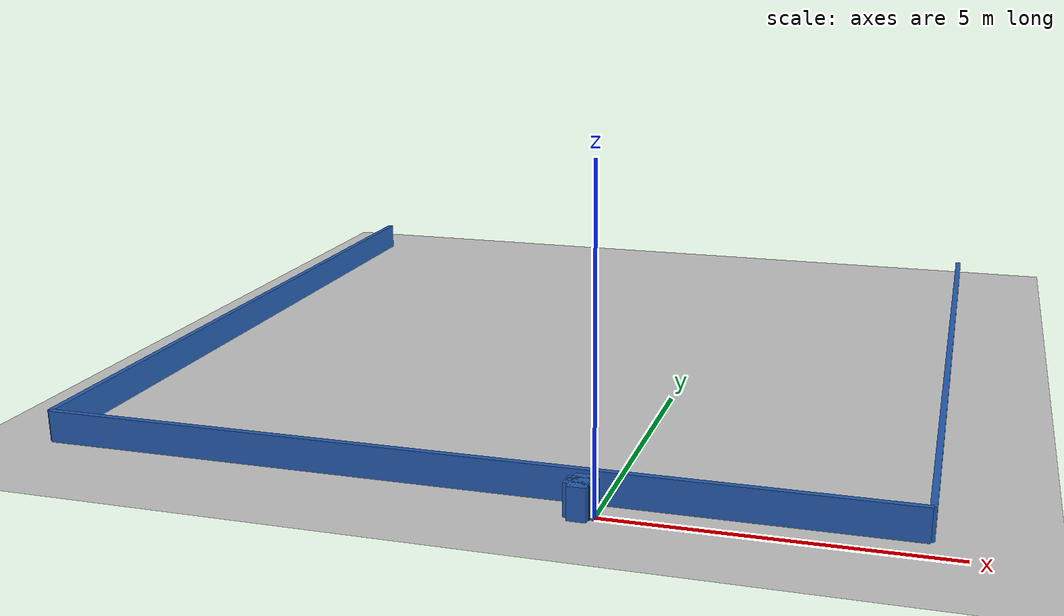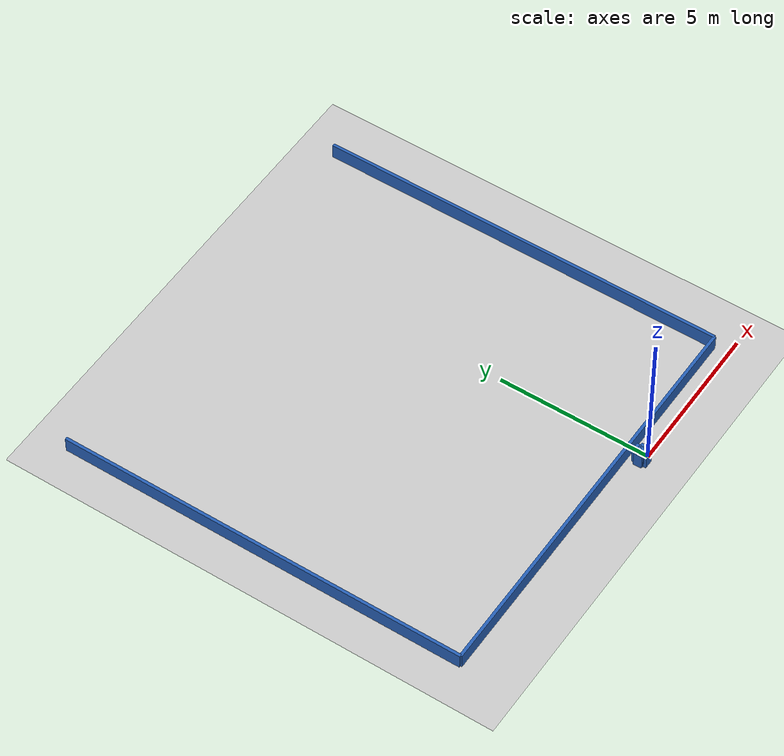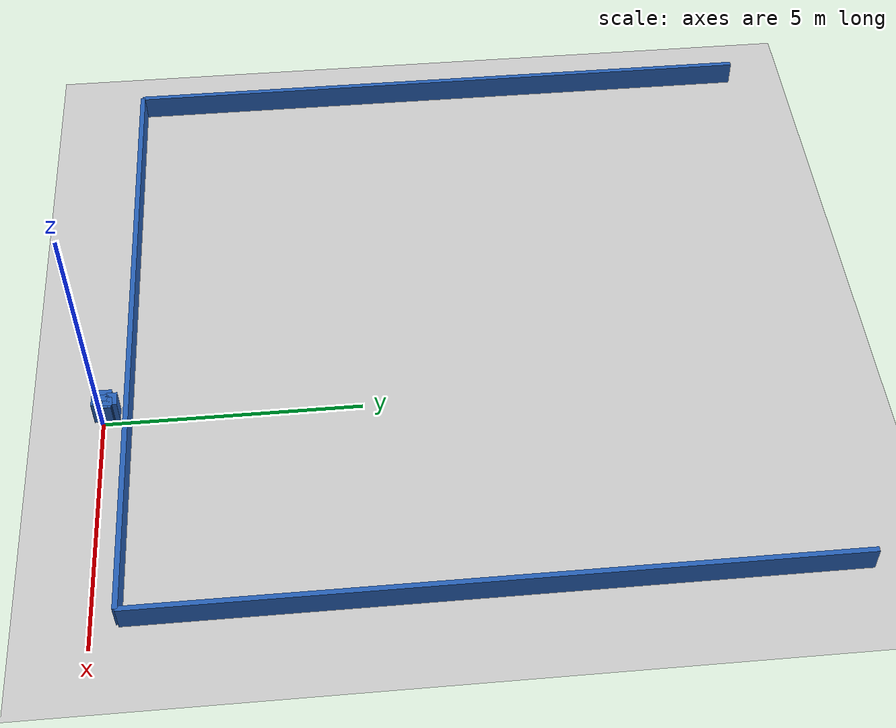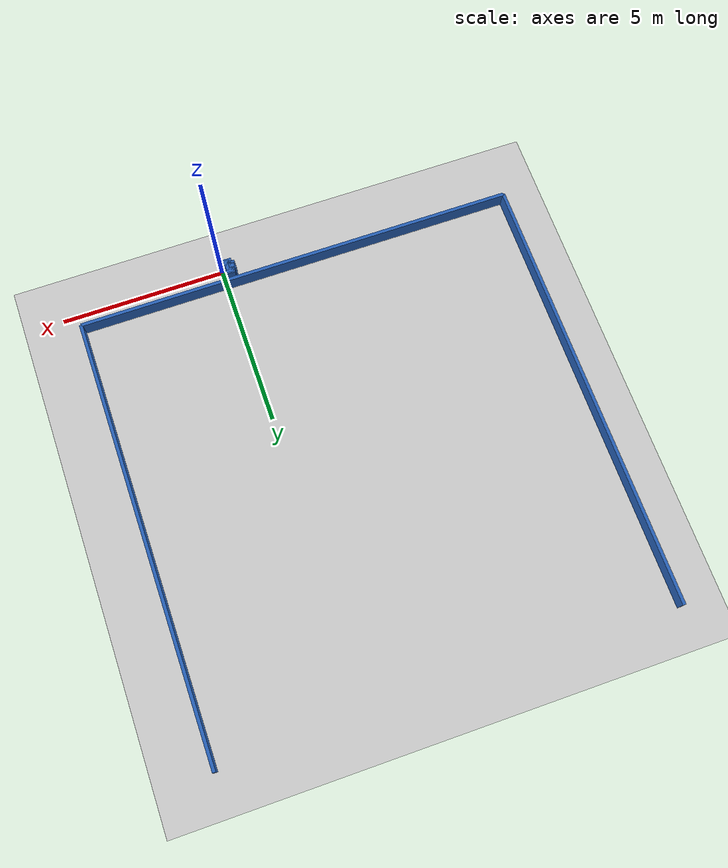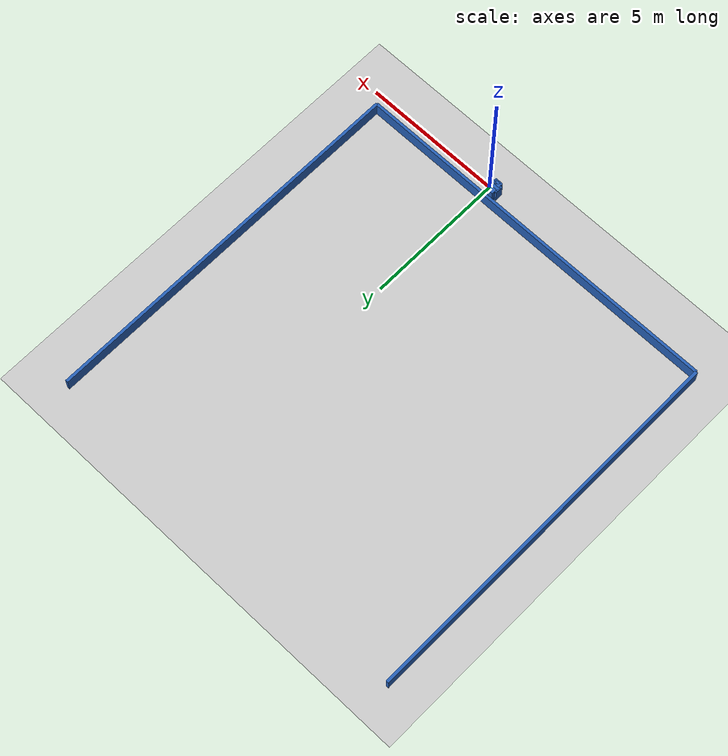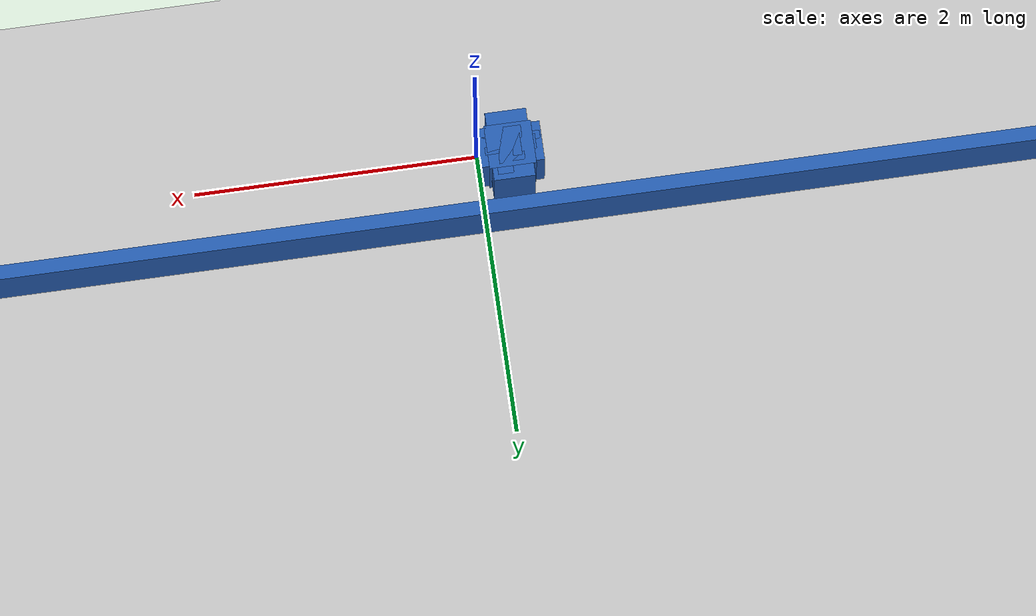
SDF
<?xml version="1.0" ?>
    <sdf version="1.5">
      <world name="default">
        <!-- A global light source -->
        <include>
          <uri>model://sun</uri>
        </include>
        <!-- A ground plane -->
        <include>
          <uri>model://ground_plane</uri>
        </include>

    <model name='libopen_space_final_T2B_145_37'>
      <static>1</static>
      <pose frame=''>-0.225000 0.075000 0.000000 0.000000 0.000000 0.000000</pose>
      <link name='link'>
        <inertial>
          <mass>1</mass>
          <inertia>
            <ixx>0.145833</ixx>
            <ixy>0</ixy>
            <ixz>0</ixz>
            <iyy>0.145833</iyy>
            <iyz>0</iyz>
            <izz>0.125</izz>
          </inertia>
        </inertial>
        <collision name='collision'>
          <geometry>
            <box>
              <size>0.23 0.21 1</size>
            </box>
          </geometry>
          <max_contacts>10</max_contacts>
          <surface>
            <contact>
              <ode/>
            </contact>
            <bounce/>
            <friction>
              <torsional>
                <ode/>
              </torsional>
              <ode/>
            </friction>
          </surface>
        </collision>
        <visual name='visual'>
          <geometry>
            <box>
              <size>0.23 0.21 1</size>
            </box>
          </geometry>
	    <material>
              <ambient>0.152000 0.379000 0.720000 1</ambient>
	      <diffuse>0.152000 0.379000 0.720000 1</diffuse>
          </material>
          <material>
            <script>
              <name>Gazebo/Grey</name>
              <uri>file://media/materials/scripts/gazebo.material</uri>
            </script>
          </material>
        </visual>
        <self_collide>0</self_collide>
        <kinematic>0</kinematic>
        <gravity>1</gravity>
      </link>
      <plugin name='libopen_space_final_T2B_145_37' filename='libopen_space_final_T2B_145_37.so'/>
    </model>

    <model name='libopen_space_final_T2B_90_76'>
      <static>1</static>
      <pose frame=''>-0.225000 0.075000 0.000000 0.000000 0.000000 0.000000</pose>
      <link name='link'>
        <inertial>
          <mass>1</mass>
          <inertia>
            <ixx>0.145833</ixx>
            <ixy>0</ixy>
            <ixz>0</ixz>
            <iyy>0.145833</iyy>
            <iyz>0</iyz>
            <izz>0.125</izz>
          </inertia>
        </inertial>
        <collision name='collision'>
          <geometry>
            <box>
              <size>0.18 0.26 1</size>
            </box>
          </geometry>
          <max_contacts>10</max_contacts>
          <surface>
            <contact>
              <ode/>
            </contact>
            <bounce/>
            <friction>
              <torsional>
                <ode/>
              </torsional>
              <ode/>
            </friction>
          </surface>
        </collision>
        <visual name='visual'>
          <geometry>
            <box>
              <size>0.18 0.26 1</size>
            </box>
          </geometry>
	    <material>
              <ambient>0.152000 0.379000 0.720000 1</ambient>
	      <diffuse>0.152000 0.379000 0.720000 1</diffuse>
          </material>
          <material>
            <script>
              <name>Gazebo/Grey</name>
              <uri>file://media/materials/scripts/gazebo.material</uri>
            </script>
          </material>
        </visual>
        <self_collide>0</self_collide>
        <kinematic>0</kinematic>
        <gravity>1</gravity>
      </link>
      <plugin name='libopen_space_final_T2B_90_76' filename='libopen_space_final_T2B_90_76.so'/>
    </model>

    <model name='libopen_space_final_T2B_61_96'>
      <static>1</static>
      <pose frame=''>-0.225000 0.075000 0.000000 0.000000 0.000000 0.000000</pose>
      <link name='link'>
        <inertial>
          <mass>1</mass>
          <inertia>
            <ixx>0.145833</ixx>
            <ixy>0</ixy>
            <ixz>0</ixz>
            <iyy>0.145833</iyy>
            <iyz>0</iyz>
            <izz>0.125</izz>
          </inertia>
        </inertial>
        <collision name='collision'>
          <geometry>
            <box>
              <size>0.29 0.49 1</size>
            </box>
          </geometry>
          <max_contacts>10</max_contacts>
          <surface>
            <contact>
              <ode/>
            </contact>
            <bounce/>
            <friction>
              <torsional>
                <ode/>
              </torsional>
              <ode/>
            </friction>
          </surface>
        </collision>
        <visual name='visual'>
          <geometry>
            <box>
              <size>0.29 0.49 1</size>
            </box>
          </geometry>
	    <material>
              <ambient>0.152000 0.379000 0.720000 1</ambient>
	      <diffuse>0.152000 0.379000 0.720000 1</diffuse>
          </material>
          <material>
            <script>
              <name>Gazebo/Grey</name>
              <uri>file://media/materials/scripts/gazebo.material</uri>
            </script>
          </material>
        </visual>
        <self_collide>0</self_collide>
        <kinematic>0</kinematic>
        <gravity>1</gravity>
      </link>
      <plugin name='libopen_space_final_T2B_61_96' filename='libopen_space_final_T2B_61_96.so'/>
    </model>

    <model name='libopen_space_final_T2B_85_62'>
      <static>1</static>
      <pose frame=''>-0.225000 0.075000 0.000000 0.000000 0.000000 0.000000</pose>
      <link name='link'>
        <inertial>
          <mass>1</mass>
          <inertia>
            <ixx>0.145833</ixx>
            <ixy>0</ixy>
            <ixz>0</ixz>
            <iyy>0.145833</iyy>
            <iyz>0</iyz>
            <izz>0.125</izz>
          </inertia>
        </inertial>
        <collision name='collision'>
          <geometry>
            <box>
              <size>0.45 0.28 1</size>
            </box>
          </geometry>
          <max_contacts>10</max_contacts>
          <surface>
            <contact>
              <ode/>
            </contact>
            <bounce/>
            <friction>
              <torsional>
                <ode/>
              </torsional>
              <ode/>
            </friction>
          </surface>
        </collision>
        <visual name='visual'>
          <geometry>
            <box>
              <size>0.45 0.28 1</size>
            </box>
          </geometry>
	    <material>
              <ambient>0.152000 0.379000 0.720000 1</ambient>
	      <diffuse>0.152000 0.379000 0.720000 1</diffuse>
          </material>
          <material>
            <script>
              <name>Gazebo/Grey</name>
              <uri>file://media/materials/scripts/gazebo.material</uri>
            </script>
          </material>
        </visual>
        <self_collide>0</self_collide>
        <kinematic>0</kinematic>
        <gravity>1</gravity>
      </link>
      <plugin name='libopen_space_final_T2B_85_62' filename='libopen_space_final_T2B_85_62.so'/>
    </model>

    <model name='libopen_space_final_T2B_140_51'>
      <static>1</static>
      <pose frame=''>-0.225000 0.075000 0.000000 0.000000 0.000000 0.000000</pose>
      <link name='link'>
        <inertial>
          <mass>1</mass>
          <inertia>
            <ixx>0.145833</ixx>
            <ixy>0</ixy>
            <ixz>0</ixz>
            <iyy>0.145833</iyy>
            <iyz>0</iyz>
            <izz>0.125</izz>
          </inertia>
        </inertial>
        <collision name='collision'>
          <geometry>
            <box>
              <size>0.15 0.17 1</size>
            </box>
          </geometry>
          <max_contacts>10</max_contacts>
          <surface>
            <contact>
              <ode/>
            </contact>
            <bounce/>
            <friction>
              <torsional>
                <ode/>
              </torsional>
              <ode/>
            </friction>
          </surface>
        </collision>
        <visual name='visual'>
          <geometry>
            <box>
              <size>0.15 0.17 1</size>
            </box>
          </geometry>
	    <material>
              <ambient>0.152000 0.379000 0.720000 1</ambient>
	      <diffuse>0.152000 0.379000 0.720000 1</diffuse>
          </material>
          <material>
            <script>
              <name>Gazebo/Grey</name>
              <uri>file://media/materials/scripts/gazebo.material</uri>
            </script>
          </material>
        </visual>
        <self_collide>0</self_collide>
        <kinematic>0</kinematic>
        <gravity>1</gravity>
      </link>
      <plugin name='libopen_space_final_T2B_140_51' filename='libopen_space_final_T2B_140_51.so'/>
    </model>

    <model name='libopen_space_final_T2B_129_21'>
      <static>1</static>
      <pose frame=''>-0.225000 0.075000 0.000000 0.000000 0.000000 0.000000</pose>
      <link name='link'>
        <inertial>
          <mass>1</mass>
          <inertia>
            <ixx>0.145833</ixx>
            <ixy>0</ixy>
            <ixz>0</ixz>
            <iyy>0.145833</iyy>
            <iyz>0</iyz>
            <izz>0.125</izz>
          </inertia>
        </inertial>
        <collision name='collision'>
          <geometry>
            <box>
              <size>0.36 0.11 1</size>
            </box>
          </geometry>
          <max_contacts>10</max_contacts>
          <surface>
            <contact>
              <ode/>
            </contact>
            <bounce/>
            <friction>
              <torsional>
                <ode/>
              </torsional>
              <ode/>
            </friction>
          </surface>
        </collision>
        <visual name='visual'>
          <geometry>
            <box>
              <size>0.36 0.11 1</size>
            </box>
          </geometry>
	    <material>
              <ambient>0.152000 0.379000 0.720000 1</ambient>
	      <diffuse>0.152000 0.379000 0.720000 1</diffuse>
          </material>
          <material>
            <script>
              <name>Gazebo/Grey</name>
              <uri>file://media/materials/scripts/gazebo.material</uri>
            </script>
          </material>
        </visual>
        <self_collide>0</self_collide>
        <kinematic>0</kinematic>
        <gravity>1</gravity>
      </link>
      <plugin name='libopen_space_final_T2B_129_21' filename='libopen_space_final_T2B_129_21.so'/>
    </model>

    <model name='libopen_space_final_T2B_52_49'>
      <static>1</static>
      <pose frame=''>-0.225000 0.075000 0.000000 0.000000 0.000000 0.000000</pose>
      <link name='link'>
        <inertial>
          <mass>1</mass>
          <inertia>
            <ixx>0.145833</ixx>
            <ixy>0</ixy>
            <ixz>0</ixz>
            <iyy>0.145833</iyy>
            <iyz>0</iyz>
            <izz>0.125</izz>
          </inertia>
        </inertial>
        <collision name='collision'>
          <geometry>
            <box>
              <size>0.18 0.24 1</size>
            </box>
          </geometry>
          <max_contacts>10</max_contacts>
          <surface>
            <contact>
              <ode/>
            </contact>
            <bounce/>
            <friction>
              <torsional>
                <ode/>
              </torsional>
              <ode/>
            </friction>
          </surface>
        </collision>
        <visual name='visual'>
          <geometry>
            <box>
              <size>0.18 0.24 1</size>
            </box>
          </geometry>
	    <material>
              <ambient>0.152000 0.379000 0.720000 1</ambient>
	      <diffuse>0.152000 0.379000 0.720000 1</diffuse>
          </material>
          <material>
            <script>
              <name>Gazebo/Grey</name>
              <uri>file://media/materials/scripts/gazebo.material</uri>
            </script>
          </material>
        </visual>
        <self_collide>0</self_collide>
        <kinematic>0</kinematic>
        <gravity>1</gravity>
      </link>
      <plugin name='libopen_space_final_T2B_52_49' filename='libopen_space_final_T2B_52_49.so'/>
    </model>

    <model name='libopen_space_final_T2B_83_61'>
      <static>1</static>
      <pose frame=''>-0.225000 0.075000 0.000000 0.000000 0.000000 0.000000</pose>
      <link name='link'>
        <inertial>
          <mass>1</mass>
          <inertia>
            <ixx>0.145833</ixx>
            <ixy>0</ixy>
            <ixz>0</ixz>
            <iyy>0.145833</iyy>
            <iyz>0</iyz>
            <izz>0.125</izz>
          </inertia>
        </inertial>
        <collision name='collision'>
          <geometry>
            <box>
              <size>0.30 0.31 1</size>
            </box>
          </geometry>
          <max_contacts>10</max_contacts>
          <surface>
            <contact>
              <ode/>
            </contact>
            <bounce/>
            <friction>
              <torsional>
                <ode/>
              </torsional>
              <ode/>
            </friction>
          </surface>
        </collision>
        <visual name='visual'>
          <geometry>
            <box>
              <size>0.30 0.31 1</size>
            </box>
          </geometry>
	    <material>
              <ambient>0.152000 0.379000 0.720000 1</ambient>
	      <diffuse>0.152000 0.379000 0.720000 1</diffuse>
          </material>
          <material>
            <script>
              <name>Gazebo/Grey</name>
              <uri>file://media/materials/scripts/gazebo.material</uri>
            </script>
          </material>
        </visual>
        <self_collide>0</self_collide>
        <kinematic>0</kinematic>
        <gravity>1</gravity>
      </link>
      <plugin name='libopen_space_final_T2B_83_61' filename='libopen_space_final_T2B_83_61.so'/>
    </model>

    <model name='libopen_space_final_T2B_114_22'>
      <static>1</static>
      <pose frame=''>-0.225000 0.075000 0.000000 0.000000 0.000000 0.000000</pose>
      <link name='link'>
        <inertial>
          <mass>1</mass>
          <inertia>
            <ixx>0.145833</ixx>
            <ixy>0</ixy>
            <ixz>0</ixz>
            <iyy>0.145833</iyy>
            <iyz>0</iyz>
            <izz>0.125</izz>
          </inertia>
        </inertial>
        <collision name='collision'>
          <geometry>
            <box>
              <size>0.43 0.15 1</size>
            </box>
          </geometry>
          <max_contacts>10</max_contacts>
          <surface>
            <contact>
              <ode/>
            </contact>
            <bounce/>
            <friction>
              <torsional>
                <ode/>
              </torsional>
              <ode/>
            </friction>
          </surface>
        </collision>
        <visual name='visual'>
          <geometry>
            <box>
              <size>0.43 0.15 1</size>
            </box>
          </geometry>
	    <material>
              <ambient>0.152000 0.379000 0.720000 1</ambient>
	      <diffuse>0.152000 0.379000 0.720000 1</diffuse>
          </material>
          <material>
            <script>
              <name>Gazebo/Grey</name>
              <uri>file://media/materials/scripts/gazebo.material</uri>
            </script>
          </material>
        </visual>
        <self_collide>0</self_collide>
        <kinematic>0</kinematic>
        <gravity>1</gravity>
      </link>
      <plugin name='libopen_space_final_T2B_114_22' filename='libopen_space_final_T2B_114_22.so'/>
    </model>

    <model name='libopen_space_final_T2B_91_57'>
      <static>1</static>
      <pose frame=''>-0.225000 0.075000 0.000000 0.000000 0.000000 0.000000</pose>
      <link name='link'>
        <inertial>
          <mass>1</mass>
          <inertia>
            <ixx>0.145833</ixx>
            <ixy>0</ixy>
            <ixz>0</ixz>
            <iyy>0.145833</iyy>
            <iyz>0</iyz>
            <izz>0.125</izz>
          </inertia>
        </inertial>
        <collision name='collision'>
          <geometry>
            <box>
              <size>0.33 0.31 1</size>
            </box>
          </geometry>
          <max_contacts>10</max_contacts>
          <surface>
            <contact>
              <ode/>
            </contact>
            <bounce/>
            <friction>
              <torsional>
                <ode/>
              </torsional>
              <ode/>
            </friction>
          </surface>
        </collision>
        <visual name='visual'>
          <geometry>
            <box>
              <size>0.33 0.31 1</size>
            </box>
          </geometry>
	    <material>
              <ambient>0.152000 0.379000 0.720000 1</ambient>
	      <diffuse>0.152000 0.379000 0.720000 1</diffuse>
          </material>
          <material>
            <script>
              <name>Gazebo/Grey</name>
              <uri>file://media/materials/scripts/gazebo.material</uri>
            </script>
          </material>
        </visual>
        <self_collide>0</self_collide>
        <kinematic>0</kinematic>
        <gravity>1</gravity>
      </link>
      <plugin name='libopen_space_final_T2B_91_57' filename='libopen_space_final_T2B_91_57.so'/>
    </model>

    <model name='libopen_space_final_T2B_96_80'>
      <static>1</static>
      <pose frame=''>-0.225000 0.075000 0.000000 0.000000 0.000000 0.000000</pose>
      <link name='link'>
        <inertial>
          <mass>1</mass>
          <inertia>
            <ixx>0.145833</ixx>
            <ixy>0</ixy>
            <ixz>0</ixz>
            <iyy>0.145833</iyy>
            <iyz>0</iyz>
            <izz>0.125</izz>
          </inertia>
        </inertial>
        <collision name='collision'>
          <geometry>
            <box>
              <size>0.27 0.14 1</size>
            </box>
          </geometry>
          <max_contacts>10</max_contacts>
          <surface>
            <contact>
              <ode/>
            </contact>
            <bounce/>
            <friction>
              <torsional>
                <ode/>
              </torsional>
              <ode/>
            </friction>
          </surface>
        </collision>
        <visual name='visual'>
          <geometry>
            <box>
              <size>0.27 0.14 1</size>
            </box>
          </geometry>
	    <material>
              <ambient>0.152000 0.379000 0.720000 1</ambient>
	      <diffuse>0.152000 0.379000 0.720000 1</diffuse>
          </material>
          <material>
            <script>
              <name>Gazebo/Grey</name>
              <uri>file://media/materials/scripts/gazebo.material</uri>
            </script>
          </material>
        </visual>
        <self_collide>0</self_collide>
        <kinematic>0</kinematic>
        <gravity>1</gravity>
      </link>
      <plugin name='libopen_space_final_T2B_96_80' filename='libopen_space_final_T2B_96_80.so'/>
    </model>

    <model name='libopen_space_final_T2B_111_12'>
      <static>1</static>
      <pose frame=''>-0.225000 0.075000 0.000000 0.000000 0.000000 0.000000</pose>
      <link name='link'>
        <inertial>
          <mass>1</mass>
          <inertia>
            <ixx>0.145833</ixx>
            <ixy>0</ixy>
            <ixz>0</ixz>
            <iyy>0.145833</iyy>
            <iyz>0</iyz>
            <izz>0.125</izz>
          </inertia>
        </inertial>
        <collision name='collision'>
          <geometry>
            <box>
              <size>0.22 0.41 1</size>
            </box>
          </geometry>
          <max_contacts>10</max_contacts>
          <surface>
            <contact>
              <ode/>
            </contact>
            <bounce/>
            <friction>
              <torsional>
                <ode/>
              </torsional>
              <ode/>
            </friction>
          </surface>
        </collision>
        <visual name='visual'>
          <geometry>
            <box>
              <size>0.22 0.41 1</size>
            </box>
          </geometry>
	    <material>
              <ambient>0.152000 0.379000 0.720000 1</ambient>
	      <diffuse>0.152000 0.379000 0.720000 1</diffuse>
          </material>
          <material>
            <script>
              <name>Gazebo/Grey</name>
              <uri>file://media/materials/scripts/gazebo.material</uri>
            </script>
          </material>
        </visual>
        <self_collide>0</self_collide>
        <kinematic>0</kinematic>
        <gravity>1</gravity>
      </link>
      <plugin name='libopen_space_final_T2B_111_12' filename='libopen_space_final_T2B_111_12.so'/>
    </model>

        <model name='bottom_wall'>
          <static>1</static>
          <pose frame=''>-2.25 0.5 0.000000 0.000000 0.000000 1.57079632</pose>
          <link name='link'>
            <inertial>
            <mass>1</mass>
            <inertia>
              <ixx>0.145833</ixx>
              <ixy>0</ixy>
              <ixz>0</ixz>
              <iyy>0.145833</iyy>
              <iyz>0</iyz>
              <izz>0.125</izz>
            </inertia>
            </inertial>
            <collision name='collision'>
            <geometry>
              <box>
              <size>0.1 13.5 1</size>
              </box>
            </geometry>
            <max_contacts>10</max_contacts>
            <surface>
              <contact>
              <ode/>
              </contact>
              <bounce/>
              <friction>
              <torsional>
                <ode/>
              </torsional>
              <ode/>
              </friction>
            </surface>
            </collision>
            <visual name='visual'>
            <geometry>
              <box>
              <size>0.1 13.5 1</size>
              </box>
            </geometry>
            <material>
              <ambient>0.152000 0.379000 0.720000 1</ambient>
            <diffuse>0.152000 0.379000 0.720000 1</diffuse>
            </material>
            <material>
              <script>
              <name>Gazebo/Grey</name>
              <uri>file://media/materials/scripts/gazebo.material</uri>
              </script>
            </material>
            </visual>
            <self_collide>0</self_collide>
            <kinematic>0</kinematic>
            <gravity>1</gravity>
          </link>
        </model>

        <model name='left_wall'>
          <static>1</static>
          <pose frame=''>-9 7.25 0.000000 0.000000 0.000000 0.000000</pose>
          <link name='link'>
            <inertial>
            <mass>1</mass>
            <inertia>
              <ixx>0.145833</ixx>
              <ixy>0</ixy>
              <ixz>0</ixz>
              <iyy>0.145833</iyy>
              <iyz>0</iyz>
              <izz>0.125</izz>
            </inertia>
            </inertial>
            <collision name='collision'>
            <geometry>
              <box>
              <size>0.1 13.5 1</size>
              </box>
            </geometry>
            <max_contacts>10</max_contacts>
            <surface>
              <contact>
              <ode/>
              </contact>
              <bounce/>
              <friction>
              <torsional>
                <ode/>
              </torsional>
              <ode/>
              </friction>
            </surface>
            </collision>
            <visual name='visual'>
            <geometry>
              <box>
              <size>0.1 13.5 1</size>
              </box>
            </geometry>
            <material>
              <ambient>0.152000 0.379000 0.720000 1</ambient>
            <diffuse>0.152000 0.379000 0.720000 1</diffuse>
            </material>
            <material>
              <script>
              <name>Gazebo/Grey</name>
              <uri>file://media/materials/scripts/gazebo.material</uri>
              </script>
            </material>
            </visual>
            <self_collide>0</self_collide>
            <kinematic>0</kinematic>
            <gravity>1</gravity>
          </link>
        </model>

        <model name='right_wall'>
          <static>1</static>
          <pose frame=''>4.5 7.25 0.000000 0.000000 0.000000 0.000000</pose>
          <link name='link'>
            <inertial>
            <mass>1</mass>
            <inertia>
              <ixx>0.145833</ixx>
              <ixy>0</ixy>
              <ixz>0</ixz>
              <iyy>0.145833</iyy>
              <iyz>0</iyz>
              <izz>0.125</izz>
            </inertia>
            </inertial>
            <collision name='collision'>
            <geometry>
              <box>
              <size>0.1 13.5 1</size>
              </box>
            </geometry>
            <max_contacts>10</max_contacts>
            <surface>
              <contact>
              <ode/>
              </contact>
              <bounce/>
              <friction>
              <torsional>
                <ode/>
              </torsional>
              <ode/>
              </friction>
            </surface>
            </collision>
            <visual name='visual'>
            <geometry>
              <box>
              <size>0.1 13.5 1</size>
              </box>
            </geometry>
            <material>
              <ambient>0.152000 0.379000 0.720000 1</ambient>
            <diffuse>0.152000 0.379000 0.720000 1</diffuse>
            </material>
            <material>
              <script>
              <name>Gazebo/Grey</name>
              <uri>file://media/materials/scripts/gazebo.material</uri>
              </script>
            </material>
            </visual>
            <self_collide>0</self_collide>
            <kinematic>0</kinematic>
            <gravity>1</gravity>
          </link>
        </model>

      </world>
    </sdf>"
